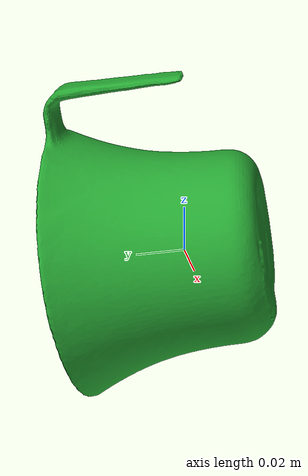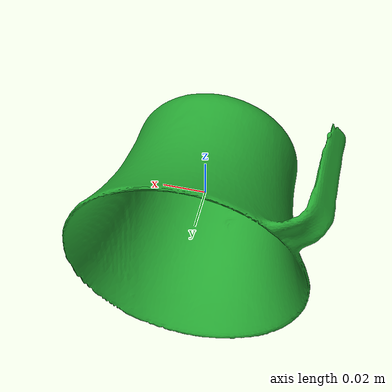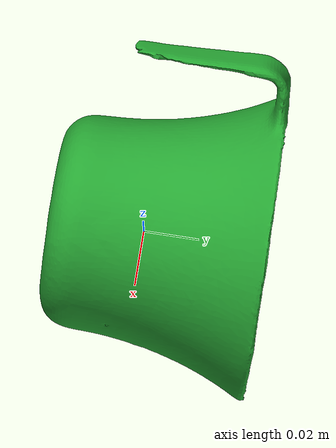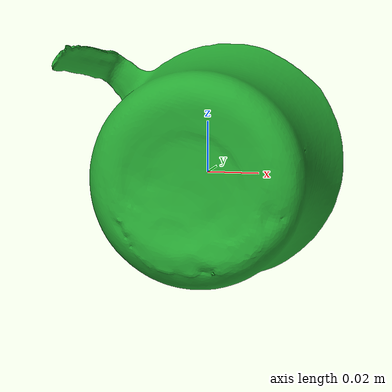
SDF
<?xml version='1.0'?>
<sdf version="1.4">
  <model name="GreenCup">
    <static>false</static>
    <link name="link">
      <inertial>
        <pose>-0.0053259202805764705 0.010881819941485788 0.0029571918444689406 -0.8792268499909391 0.07446252711806792 1.624703974201339</pose>
        <mass>0.05967530124251488</mass>
        <inertia>
          <ixx>7.978691832979318e-05</ixx>
          <ixy>5.134221620087097e-21</ixy>
          <ixz>2.8649787808498215e-20</ixz>
          <iyy>7.560002959038104e-05</iyy>
          <iyz>8.775990681045183e-21</iyz>
          <izz>5.962041242651418e-05</izz>
        </inertia>
      </inertial>
      <collision name="collision">
        <geometry>
          <mesh>
            <!-- Use a downsampled mesh for collisions -->
            <uri>model:///GreenCup/GreenCup_250_collision.obj</uri>
	        </mesh>
        </geometry>
        <surface>
      </surface>
      </collision>
      <visual name="visual">
        <geometry>
          <mesh>
            <uri>model:///GreenCup/GreenCup_25k_tex.obj</uri>
	        </mesh>
        </geometry>
        <material>
          <script>
            <uri>model:///GreenCup/GreenCup.material</uri>
            <name>GreenCup</name>
          </script>
        </material>
      </visual>
    </link>
  </model>
</sdf>
